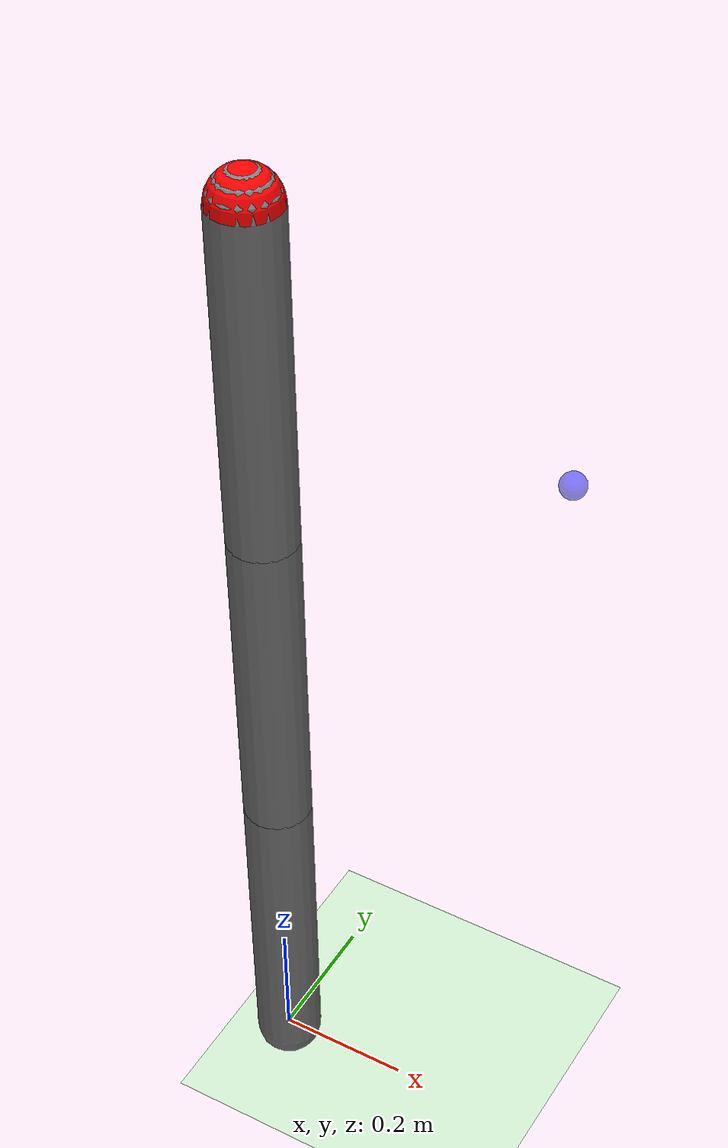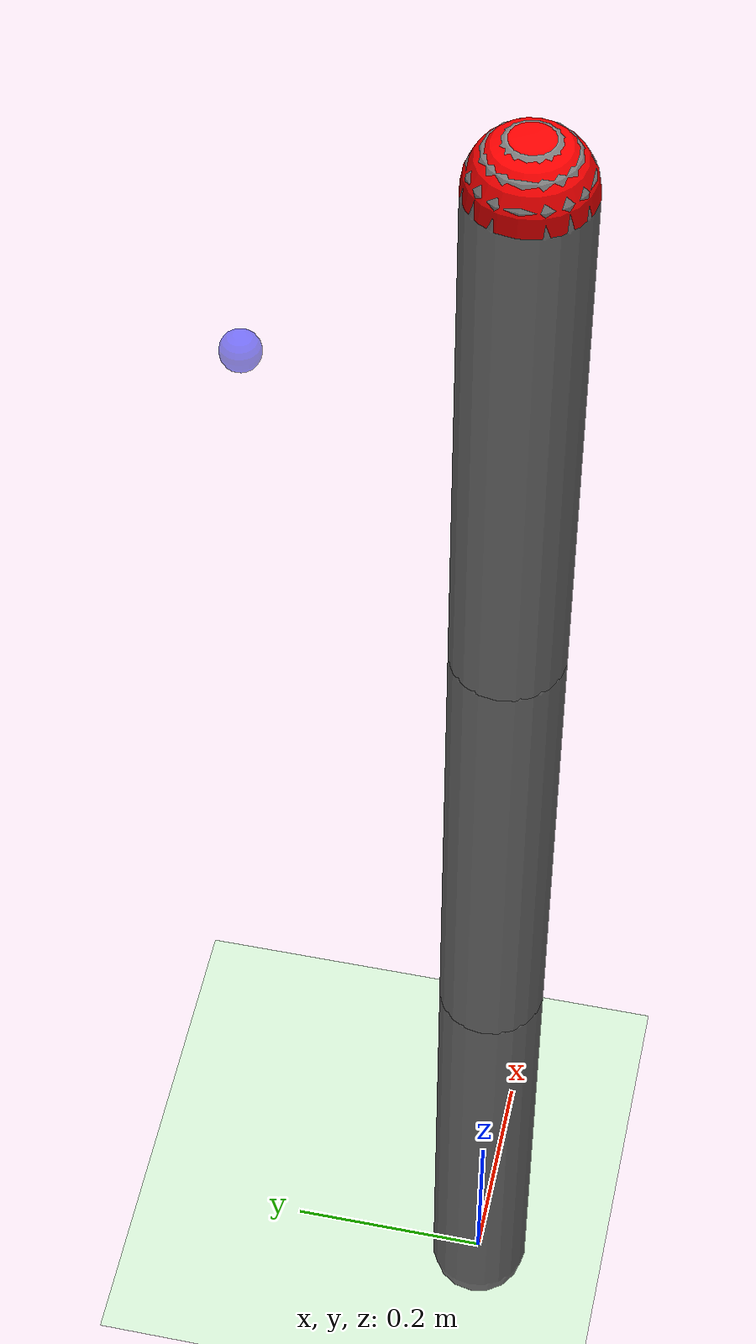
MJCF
<mujoco model="3dof_robot_arm">
    <compiler angle="radian" coordinate="local"/>
    <option gravity="0 0 -9.81" integrator="RK4" timestep="0.01"/>

    <worldbody>
            <light diffuse=".5 .5 .5" pos="0 0 3" dir="0 0 -1"/>
        <geom name="floor" pos="0 0 -0.1" size="1 1 0.1" type="plane" rgba="0.8 0.9 0.8 1"/>

        <!-- Base of the robot arm -->
        <body name="base" pos="0 0 0">
            <!-- Joint 1: Base rotation -->
            <joint name="joint1" type="hinge" axis="0 0 1" limited="true" range="-180 180"/>
            <!-- Link 1 -->
            <geom name="link1_geom" type="capsule" fromto="0 0 0 0 0 0.5" size="0.05" mass="1"/>
            <!-- Link 2 -->
            <body name="link2" pos="0 0 0.5">
                <!-- Joint 2: Shoulder pitch (up/down) -->
                <joint name="joint2" type="hinge" axis="0 1 0" limited="true" range="-90 90"/>
                <geom name="link2_geom" type="capsule" fromto="0 0 0 0 0 0.5" size="0.05" mass="0.8"/>
                <!-- Link 3 -->
                <body name="link3" pos="0 0 0.5">
                    <!-- Joint 3: Elbow pitch (up/down) -->
                    <joint name="joint3" type="hinge" axis="0 1 0" limited="true" range="-90 90"/>
                    <geom name="link3_geom" type="capsule" fromto="0 0 0 0 0 0.5" size="0.05" mass="0.6"/>
                    <!-- End-effector -->
                    <body name="end_effector" pos="0 0 0.5">
                        <geom type="sphere" size="0.05" rgba="1 0 0 1" mass="0.2"/>
                        <site name="end_eff" pos="0 0 0" size="0.01" rgba="1 0 0 1"/>
                    </body>
                </body>
            </body>
        </body>
<body name="target" pos="0.3 0.3 1">
            <geom name="target" type="sphere" size="0.02" rgba="0 0 1 0.5"/>
        </body>
    </worldbody>

    <actuator>
        <position joint="joint1" ctrlrange="-1.57 1.57" kp="7" kv="0.4" ctrllimited="true" gear="2"/>
        <position joint="joint2" ctrlrange="-1.57 1.57" ctrllimited="true" />
        <position joint="joint3" ctrlrange="-1.57 1.57" ctrllimited="true" />
    </actuator>
   <sensor>
    <jointpos name="joint1_pos" joint="joint1"/>
    <jointpos name="joint2_pos" joint="joint2"/>
    <jointpos name="joint3_pos" joint="joint3"/>
    <framepos name="end_effector_pos" objtype="body" objname="end_effector"/>
</sensor>
</mujoco>
